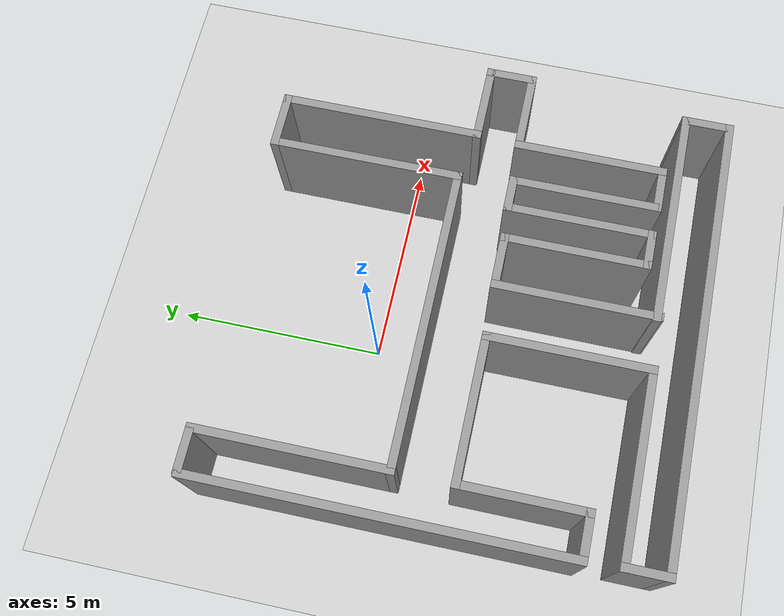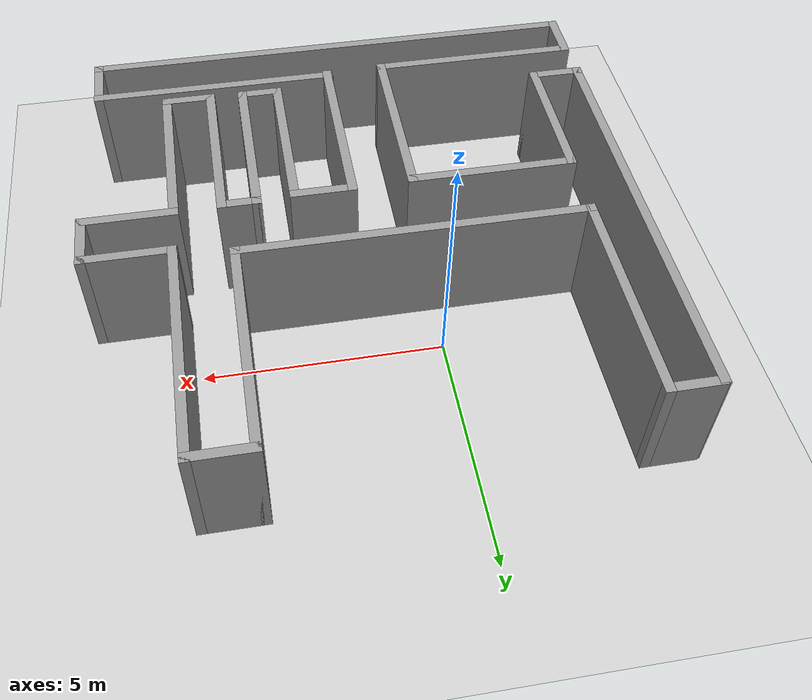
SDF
<sdf version="1.4">
 <world name="default">
  <light name="sun" type="directional">
   <pose>0 0 10 0 -0 0</pose>
   <diffuse>0.8 0.8 0.8 1</diffuse>
   <specular>0.2 0.2 0.2 1</specular>
   <attenuation>
    <range>1000</range>
    <constant>0.9</constant>
    <linear>0.01</linear>
    <quadratic>0.001</quadratic>
   </attenuation>
   <direction>-0.5 0.1 -0.9</direction>
  </light>
  <model name="ground_plane">
   <static>1</static>
   <link name="link">
    <collision name="collision">
     <geometry><plane><normal>0 0 1</normal><size>100 100</size></plane></geometry>
     <surface><friction><ode><mu>100</mu><mu2>50</mu2></ode></friction></surface>
    </collision>
    <visual name="visual">
     <cast_shadows>0</cast_shadows>
     <geometry><plane><normal>0 0 1</normal><size>100 100</size></plane></geometry>
     <material>
      <script><uri>file://media/materials/scripts/gazebo.material</uri><name>Gazebo/Grey</name></script>
     </material>
    </visual>
    <velocity_decay><linear>0</linear><angular>0</angular></velocity_decay>
   </link>
  </model>
  <model name="test_map">
   <link name="Wall_105">
    <collision name="Wall_105_Collision">
     <geometry><box><size>4.01655 0.2 2.5</size></box></geometry>
     <pose>0 0 1.25 0 -0 0</pose>
    </collision>
    <visual name="Wall_105_Visual">
     <pose>0 0 1.25 0 -0 0</pose>
     <geometry><box><size>4.01655 0.2 2.5</size></box></geometry>
     <material>
      <script><uri>file://media/materials/scripts/gazebo.material</uri><name>Gazebo/Grey</name></script>
     </material>
    </visual>
    <velocity_decay><linear>0</linear><angular>0</angular></velocity_decay>
    <pose>1.49757 -4.44717 0 0 -0 1.5708</pose>
   </link>
   <link name="Wall_106">
    <collision name="Wall_106_Collision">
     <geometry><box><size>1.40279 0.2 2.5</size></box></geometry>
     <pose>0 0 1.25 0 -0 0</pose>
    </collision>
    <visual name="Wall_106_Visual">
     <pose>0 0 1.25 0 -0 0</pose>
     <geometry><box><size>1.40279 0.2 2.5</size></box></geometry>
     <material>
      <script><uri>file://media/materials/scripts/gazebo.material</uri><name>Gazebo/Grey</name></script>
     </material>
    </visual>
    <velocity_decay><linear>0</linear><angular>0</angular></velocity_decay>
    <pose>2.09896 -2.53889 0 0 -0 0</pose>
   </link>
   <link name="Wall_107">
    <collision name="Wall_107_Collision">
     <geometry><box><size>3.57707 0.2 2.5</size></box></geometry>
     <pose>0 0 1.25 0 -0 0</pose>
    </collision>
    <visual name="Wall_107_Visual">
     <pose>0 0 1.25 0 -0 0</pose>
     <geometry><box><size>3.57707 0.2 2.5</size></box></geometry>
     <material>
      <script><uri>file://media/materials/scripts/gazebo.material</uri><name>Gazebo/Grey</name></script>
     </material>
    </visual>
    <velocity_decay><linear>0</linear><angular>0</angular></velocity_decay>
    <pose>2.70036 -4.22743 0 0 0 -1.5708</pose>
   </link>
   <link name="Wall_108">
    <collision name="Wall_108_Collision">
     <geometry><box><size>0.986441 0.2 2.5</size></box></geometry>
     <pose>0 0 1.25 0 -0 0</pose>
    </collision>
    <visual name="Wall_108_Visual">
     <pose>0 0 1.25 0 -0 0</pose>
     <geometry><box><size>0.986441 0.2 2.5</size></box></geometry>
     <material>
      <script><uri>file://media/materials/scripts/gazebo.material</uri><name>Gazebo/Grey</name></script>
     </material>
    </visual>
    <velocity_decay><linear>0</linear><angular>0</angular></velocity_decay>
    <pose>3.09358 -5.91596 0 0 -0 0</pose>
   </link>
   <link name="Wall_109">
    <collision name="Wall_109_Collision">
     <geometry><box><size>3.64646 0.2 2.5</size></box></geometry>
     <pose>0 0 1.25 0 -0 0</pose>
    </collision>
    <visual name="Wall_109_Visual">
     <pose>0 0 1.25 0 -0 0</pose>
     <geometry><box><size>3.64646 0.2 2.5</size></box></geometry>
     <material>
      <script><uri>file://media/materials/scripts/gazebo.material</uri><name>Gazebo/Grey</name></script>
     </material>
    </visual>
    <velocity_decay><linear>0</linear><angular>0</angular></velocity_decay>
    <pose>3.4868 -4.19273 0 0 -0 1.5708</pose>
   </link>
   <link name="Wall_110">
    <collision name="Wall_110_Collision">
     <geometry><box><size>0.917049 0.2 2.5</size></box></geometry>
     <pose>0 0 1.25 0 -0 0</pose>
    </collision>
    <visual name="Wall_110_Visual">
     <pose>0 0 1.25 0 -0 0</pose>
     <geometry><box><size>0.917049 0.2 2.5</size></box></geometry>
     <material>
      <script><uri>file://media/materials/scripts/gazebo.material</uri><name>Gazebo/Grey</name></script>
     </material>
    </visual>
    <velocity_decay><linear>0</linear><angular>0</angular></velocity_decay>
    <pose>3.84532 -2.4695 0 0 -0 0</pose>
   </link>
   <link name="Wall_111">
    <collision name="Wall_111_Collision">
     <geometry><box><size>3.66959 0.2 2.5</size></box></geometry>
     <pose>0 0 1.25 0 -0 0</pose>
    </collision>
    <visual name="Wall_111_Visual">
     <pose>0 0 1.25 0 -0 0</pose>
     <geometry><box><size>3.66959 0.2 2.5</size></box></geometry>
     <material>
      <script><uri>file://media/materials/scripts/gazebo.material</uri><name>Gazebo/Grey</name></script>
     </material>
    </visual>
    <velocity_decay><linear>0</linear><angular>0</angular></velocity_decay>
    <pose>4.20385 -4.2043 0 0 0 -1.5708</pose>
   </link>
   <link name="Wall_112">
    <collision name="Wall_112_Collision">
     <geometry><box><size>1.17149 0.2 2.5</size></box></geometry>
     <pose>0 0 1.25 0 -0 0</pose>
    </collision>
    <visual name="Wall_112_Visual">
     <pose>0 0 1.25 0 -0 0</pose>
     <geometry><box><size>1.17149 0.2 2.5</size></box></geometry>
     <material>
      <script><uri>file://media/materials/scripts/gazebo.material</uri><name>Gazebo/Grey</name></script>
     </material>
    </visual>
    <velocity_decay><linear>0</linear><angular>0</angular></velocity_decay>
    <pose>4.68959 -5.93909 0 0 -0 0</pose>
   </link>
   <link name="Wall_113">
    <collision name="Wall_113_Collision">
     <geometry><box><size>3.71585 0.2 2.5</size></box></geometry>
     <pose>0 0 1.25 0 -0 0</pose>
    </collision>
    <visual name="Wall_113_Visual">
     <pose>0 0 1.25 0 -0 0</pose>
     <geometry><box><size>3.71585 0.2 2.5</size></box></geometry>
     <material>
      <script><uri>file://media/materials/scripts/gazebo.material</uri><name>Gazebo/Grey</name></script>
     </material>
    </visual>
    <velocity_decay><linear>0</linear><angular>0</angular></velocity_decay>
    <pose>5.17533 -4.18117 0 0 -0 1.5708</pose>
   </link>
   <link name="Wall_114">
    <collision name="Wall_114_Collision">
     <geometry><box><size>2.05045 0.2 2.5</size></box></geometry>
     <pose>0 0 1.25 0 -0 0</pose>
    </collision>
    <visual name="Wall_114_Visual">
     <pose>0 0 1.25 0 -0 0</pose>
     <geometry><box><size>2.05045 0.2 2.5</size></box></geometry>
     <material>
      <script><uri>file://media/materials/scripts/gazebo.material</uri><name>Gazebo/Grey</name></script>
     </material>
    </visual>
    <velocity_decay><linear>0</linear><angular>0</angular></velocity_decay>
    <pose>6.10056 -2.42324 0 0 -0 0</pose>
   </link>
   <link name="Wall_115">
    <collision name="Wall_115_Collision">
     <geometry><box><size>1.24088 0.2 2.5</size></box></geometry>
     <pose>0 0 1.25 0 -0 0</pose>
    </collision>
    <visual name="Wall_115_Visual">
     <pose>0 0 1.25 0 -0 0</pose>
     <geometry><box><size>1.24088 0.2 2.5</size></box></geometry>
     <material>
      <script><uri>file://media/materials/scripts/gazebo.material</uri><name>Gazebo/Grey</name></script>
     </material>
    </visual>
    <velocity_decay><linear>0</linear><angular>0</angular></velocity_decay>
    <pose>7.02578 -1.9028 0 0 -0 1.5708</pose>
   </link>
   <link name="Wall_116">
    <collision name="Wall_116_Collision">
     <geometry><box><size>1.98106 0.2 2.5</size></box></geometry>
     <pose>0 0 1.25 0 -0 0</pose>
    </collision>
    <visual name="Wall_116_Visual">
     <pose>0 0 1.25 0 -0 0</pose>
     <geometry><box><size>1.98106 0.2 2.5</size></box></geometry>
     <material>
      <script><uri>file://media/materials/scripts/gazebo.material</uri><name>Gazebo/Grey</name></script>
     </material>
    </visual>
    <velocity_decay><linear>0</linear><angular>0</angular></velocity_decay>
    <pose>6.13525 -1.38236 0 0 -0 3.14159</pose>
   </link>
   <link name="Wall_117">
    <collision name="Wall_117_Collision">
     <geometry><box><size>4.9649 0.2 2.5</size></box></geometry>
     <pose>0 0 1.25 0 -0 0</pose>
    </collision>
    <visual name="Wall_117_Visual">
     <pose>0 0 1.25 0 -0 0</pose>
     <geometry><box><size>4.9649 0.2 2.5</size></box></geometry>
     <material>
      <script><uri>file://media/materials/scripts/gazebo.material</uri><name>Gazebo/Grey</name></script>
     </material>
    </visual>
    <velocity_decay><linear>0</linear><angular>0</angular></velocity_decay>
    <pose>5.24473 1.00009 0 0 -0 1.5708</pose>
   </link>
   <link name="Wall_118">
    <collision name="Wall_118_Collision">
     <geometry><box><size>1.40279 0.2 2.5</size></box></geometry>
     <pose>0 0 1.25 0 -0 0</pose>
    </collision>
    <visual name="Wall_118_Visual">
     <pose>0 0 1.25 0 -0 0</pose>
     <geometry><box><size>1.40279 0.2 2.5</size></box></geometry>
     <material>
      <script><uri>file://media/materials/scripts/gazebo.material</uri><name>Gazebo/Grey</name></script>
     </material>
    </visual>
    <velocity_decay><linear>0</linear><angular>0</angular></velocity_decay>
    <pose>4.64333 3.38254 0 0 -0 3.14159</pose>
   </link>
   <link name="Wall_119">
    <collision name="Wall_119_Collision">
     <geometry><box><size>4.7336 0.2 2.5</size></box></geometry>
     <pose>0 0 1.25 0 -0 0</pose>
    </collision>
    <visual name="Wall_119_Visual">
     <pose>0 0 1.25 0 -0 0</pose>
     <geometry><box><size>4.7336 0.2 2.5</size></box></geometry>
     <material>
      <script><uri>file://media/materials/scripts/gazebo.material</uri><name>Gazebo/Grey</name></script>
     </material>
    </visual>
    <velocity_decay><linear>0</linear><angular>0</angular></velocity_decay>
    <pose>4.04193 1.11574 0 0 0 -1.5708</pose>
   </link>
   <link name="Wall_120">
    <collision name="Wall_120_Collision">
     <geometry><box><size>7.43988 0.2 2.5</size></box></geometry>
     <pose>0 0 1.25 0 -0 0</pose>
    </collision>
    <visual name="Wall_120_Visual">
     <pose>0 0 1.25 0 -0 0</pose>
     <geometry><box><size>7.43988 0.2 2.5</size></box></geometry>
     <material>
      <script><uri>file://media/materials/scripts/gazebo.material</uri><name>Gazebo/Grey</name></script>
     </material>
    </visual>
    <velocity_decay><linear>0</linear><angular>0</angular></velocity_decay>
    <pose>0.421994 -1.15106 0 0 -0 3.14159</pose>
   </link>
   <link name="Wall_121">
    <collision name="Wall_121_Collision">
     <geometry><box><size>4.71047 0.2 2.5</size></box></geometry>
     <pose>0 0 1.25 0 -0 0</pose>
    </collision>
    <visual name="Wall_121_Visual">
     <pose>0 0 1.25 0 -0 0</pose>
     <geometry><box><size>4.71047 0.2 2.5</size></box></geometry>
     <material>
      <script><uri>file://media/materials/scripts/gazebo.material</uri><name>Gazebo/Grey</name></script>
     </material>
    </visual>
    <velocity_decay><linear>0</linear><angular>0</angular></velocity_decay>
    <pose>-3.19795 1.10418 0 0 -0 1.5708</pose>
   </link>
   <link name="Wall_122">
    <collision name="Wall_122_Collision">
     <geometry><box><size>1.17149 0.2 2.5</size></box></geometry>
     <pose>0 0 1.25 0 -0 0</pose>
    </collision>
    <visual name="Wall_122_Visual">
     <pose>0 0 1.25 0 -0 0</pose>
     <geometry><box><size>1.17149 0.2 2.5</size></box></geometry>
     <material>
      <script><uri>file://media/materials/scripts/gazebo.material</uri><name>Gazebo/Grey</name></script>
     </material>
    </visual>
    <velocity_decay><linear>0</linear><angular>0</angular></velocity_decay>
    <pose>-3.68369 3.35941 0 0 -0 3.14159</pose>
   </link>
   <link name="Wall_61">
    <collision name="Wall_61_Collision">
     <geometry><box><size>9.05902 0.2 2.5</size></box></geometry>
     <pose>0 0 1.25 0 -0 0</pose>
    </collision>
    <visual name="Wall_61_Visual">
     <pose>0 0 1.25 0 -0 0</pose>
     <geometry><box><size>9.05902 0.2 2.5</size></box></geometry>
     <material>
      <script><uri>file://media/materials/scripts/gazebo.material</uri><name>Gazebo/Grey</name></script>
     </material>
    </visual>
    <velocity_decay><linear>0</linear><angular>0</angular></velocity_decay>
    <pose>-4.21569 -1.09323 0 0 0 -1.5708</pose>
   </link>
   <link name="Wall_62">
    <collision name="Wall_62_Collision">
     <geometry><box><size>1.21775 0.2 2.5</size></box></geometry>
     <pose>0 0 1.25 0 -0 0</pose>
    </collision>
    <visual name="Wall_62_Visual">
     <pose>0 0 1.25 0 -0 0</pose>
     <geometry><box><size>1.21775 0.2 2.5</size></box></geometry>
     <material>
      <script><uri>file://media/materials/scripts/gazebo.material</uri><name>Gazebo/Grey</name></script>
     </material>
    </visual>
    <velocity_decay><linear>0</linear><angular>0</angular></velocity_decay>
    <pose>-3.70682 -5.52274 0 0 -0 0</pose>
   </link>
   <link name="Wall_63">
    <collision name="Wall_63_Collision">
     <geometry><box><size>3.13759 0.2 2.5</size></box></geometry>
     <pose>0 0 1.25 0 -0 0</pose>
    </collision>
    <visual name="Wall_63_Visual">
     <pose>0 0 1.25 0 -0 0</pose>
     <geometry><box><size>3.13759 0.2 2.5</size></box></geometry>
     <material>
      <script><uri>file://media/materials/scripts/gazebo.material</uri><name>Gazebo/Grey</name></script>
     </material>
    </visual>
    <velocity_decay><linear>0</linear><angular>0</angular></velocity_decay>
    <pose>-3.19795 -4.05395 0 0 -0 1.5708</pose>
   </link>
   <link name="Wall_64">
    <collision name="Wall_64_Collision">
     <geometry><box><size>3.62333 0.2 2.5</size></box></geometry>
     <pose>0 0 1.25 0 -0 0</pose>
    </collision>
    <visual name="Wall_64_Visual">
     <pose>0 0 1.25 0 -0 0</pose>
     <geometry><box><size>3.62333 0.2 2.5</size></box></geometry>
     <material>
      <script><uri>file://media/materials/scripts/gazebo.material</uri><name>Gazebo/Grey</name></script>
     </material>
    </visual>
    <velocity_decay><linear>0</linear><angular>0</angular></velocity_decay>
    <pose>-1.48628 -2.58515 0 0 -0 0</pose>
   </link>
   <link name="Wall_65">
    <collision name="Wall_65_Collision">
     <geometry><box><size>4.01655 0.2 2.5</size></box></geometry>
     <pose>0 0 1.25 0 -0 0</pose>
    </collision>
    <visual name="Wall_65_Visual">
     <pose>0 0 1.25 0 -0 0</pose>
     <geometry><box><size>4.01655 0.2 2.5</size></box></geometry>
     <material>
      <script><uri>file://media/materials/scripts/gazebo.material</uri><name>Gazebo/Grey</name></script>
     </material>
    </visual>
    <velocity_decay><linear>0</linear><angular>0</angular></velocity_decay>
    <pose>0.225384 -4.49343 0 0 0 -1.5708</pose>
   </link>
   <link name="Wall_66">
    <collision name="Wall_66_Collision">
     <geometry><box><size>4.59481 0.2 2.5</size></box></geometry>
     <pose>0 0 1.25 0 -0 0</pose>
    </collision>
    <visual name="Wall_66_Visual">
     <pose>0 0 1.25 0 -0 0</pose>
     <geometry><box><size>4.59481 0.2 2.5</size></box></geometry>
     <material>
      <script><uri>file://media/materials/scripts/gazebo.material</uri><name>Gazebo/Grey</name></script>
     </material>
    </visual>
    <velocity_decay><linear>0</linear><angular>0</angular></velocity_decay>
    <pose>-1.97202 -6.4017 0 0 -0 3.14159</pose>
   </link>
   <link name="Wall_67">
    <collision name="Wall_67_Collision">
     <geometry><box><size>1.17149 0.2 2.5</size></box></geometry>
     <pose>0 0 1.25 0 -0 0</pose>
    </collision>
    <visual name="Wall_67_Visual">
     <pose>0 0 1.25 0 -0 0</pose>
     <geometry><box><size>1.17149 0.2 2.5</size></box></geometry>
     <material>
      <script><uri>file://media/materials/scripts/gazebo.material</uri><name>Gazebo/Grey</name></script>
     </material>
    </visual>
    <velocity_decay><linear>0</linear><angular>0</angular></velocity_decay>
    <pose>-4.16943 -6.88745 0 0 0 -1.5708</pose>
   </link>
   <link name="Wall_68">
    <collision name="Wall_68_Collision">
     <geometry><box><size>11.0483 0.2 2.5</size></box></geometry>
     <pose>0 0 1.25 0 -0 0</pose>
    </collision>
    <visual name="Wall_68_Visual">
     <pose>0 0 1.25 0 -0 0</pose>
     <geometry><box><size>11.0483 0.2 2.5</size></box></geometry>
     <material>
      <script><uri>file://media/materials/scripts/gazebo.material</uri><name>Gazebo/Grey</name></script>
     </material>
    </visual>
    <velocity_decay><linear>0</linear><angular>0</angular></velocity_decay>
    <pose>1.2547 -7.37319 0 0 -0 0</pose>
   </link>
   <link name="Wall_69">
    <collision name="Wall_69_Collision">
     <geometry><box><size>1.26401 0.2 2.5</size></box></geometry>
     <pose>0 0 1.25 0 -0 0</pose>
    </collision>
    <visual name="Wall_69_Visual">
     <pose>0 0 1.25 0 -0 0</pose>
     <geometry><box><size>1.26401 0.2 2.5</size></box></geometry>
     <material>
      <script><uri>file://media/materials/scripts/gazebo.material</uri><name>Gazebo/Grey</name></script>
     </material>
    </visual>
    <velocity_decay><linear>0</linear><angular>0</angular></velocity_decay>
    <pose>6.67882 -6.84119 0 0 -0 1.5708</pose>
   </link>
   <link name="Wall_70">
    <collision name="Wall_70_Collision">
     <geometry><box><size>5.40439 0.2 2.5</size></box></geometry>
     <pose>0 0 1.25 0 -0 0</pose>
    </collision>
    <visual name="Wall_70_Visual">
     <pose>0 0 1.25 0 -0 0</pose>
     <geometry><box><size>5.40439 0.2 2.5</size></box></geometry>
     <material>
      <script><uri>file://media/materials/scripts/gazebo.material</uri><name>Gazebo/Grey</name></script>
     </material>
    </visual>
    <velocity_decay><linear>0</linear><angular>0</angular></velocity_decay>
    <pose>4.07663 -6.30918 0 0 -0 3.14159</pose>
   </link>
   <static>1</static>
  </model>
  <physics type="ode">
   <max_step_size>0.001</max_step_size>
   <real_time_factor>1</real_time_factor>
   <real_time_update_rate>1000</real_time_update_rate>
   <gravity>0 0 -9.8</gravity>
  </physics>
  <scene><ambient>0.4 0.4 0.4 1</ambient><background>0.7 0.7 0.7 1</background><shadows>1</shadows></scene>
  <spherical_coordinates>
   <surface_model>EARTH_WGS84</surface_model>
   <latitude_deg>0</latitude_deg>
   <longitude_deg>0</longitude_deg>
   <elevation>0</elevation>
   <heading_deg>0</heading_deg>
  </spherical_coordinates>
 </world>
</sdf>
